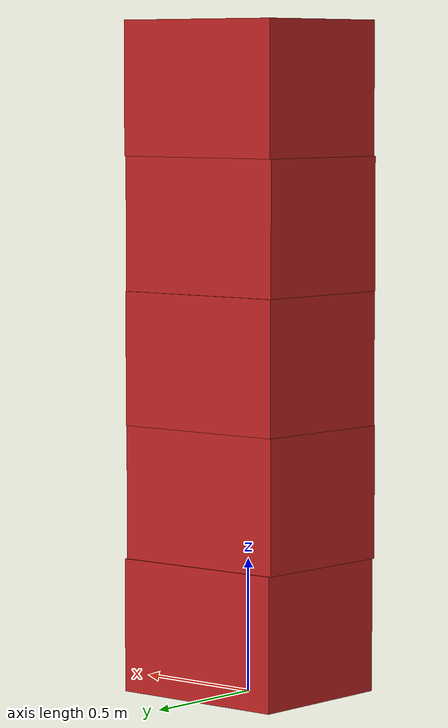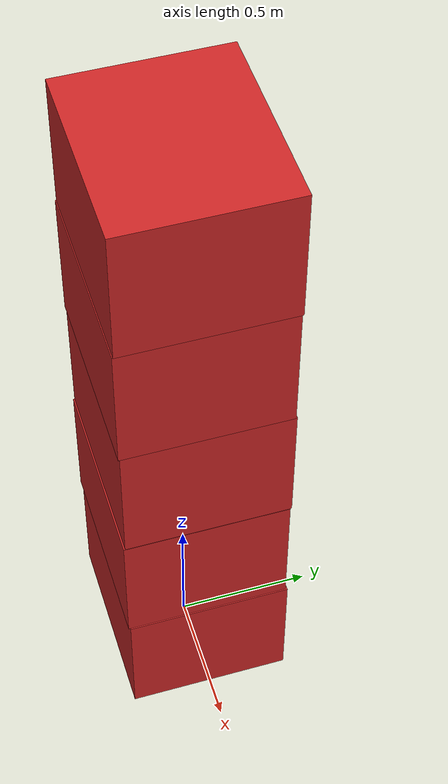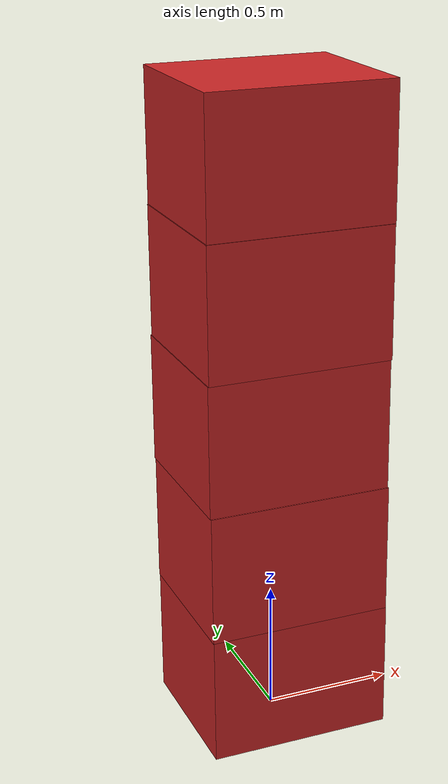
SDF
<?xml version="1.0" encoding="UTF-8"?>
<sdf version='1.4'>
    <model name="baggage_A_x5">
        <model name="baggage_A_0">
            <static>true</static>
            <link name="link">
                <collision name="collision">
                    <geometry>
                    <box>
                        <size>0.7 0.6 0.5</size>
                    </box>
                    </geometry>
                </collision>
                <visual name="visual">
                    <geometry>
                    <box>
                        <size>0.7 0.6 0.5</size>
                    </box>
                    </geometry>
                    <material>
                    <script>
                        <uri>file://media/materials/scripts/gazebo.material</uri>
                        <name>Gazebo/Red</name>
                    </script>
                    </material>
                </visual>
            </link>
            <pose frame=''>0 0 0.25 0 0 0</pose>
        </model>
        <model name="baggage_A_1">
            <static>true</static>
            <link name="link">
                <collision name="collision">
                    <geometry>
                    <box>
                        <size>0.7 0.6 0.5</size>
                    </box>
                    </geometry>
                </collision>
                <visual name="visual">
                    <geometry>
                    <box>
                        <size>0.7 0.6 0.5</size>
                    </box>
                    </geometry>
                    <material>
                    <script>
                        <uri>file://media/materials/scripts/gazebo.material</uri>
                        <name>Gazebo/Red</name>
                    </script>
                    </material>
                </visual>
            </link>
            <pose frame=''>-0.0046 -0.0065 0.75 0 0 0</pose>
        </model>
        <model name="baggage_A_2">
            <static>true</static>
            <link name="link">
                <collision name="collision">
                    <geometry>
                    <box>
                        <size>0.7 0.6 0.5</size>
                    </box>
                    </geometry>
                </collision>
                <visual name="visual">
                    <geometry>
                    <box>
                        <size>0.7 0.6 0.5</size>
                    </box>
                    </geometry>
                    <material>
                    <script>
                        <uri>file://media/materials/scripts/gazebo.material</uri>
                        <name>Gazebo/Red</name>
                    </script>
                    </material>
                </visual>
            </link>
            <pose frame=''>-0.0064 -0.0011 1.25 0 0 0</pose>
        </model>
        <model name="baggage_A_3">
            <static>true</static>
            <link name="link">
                <collision name="collision">
                    <geometry>
                    <box>
                        <size>0.7 0.6 0.5</size>
                    </box>
                    </geometry>
                </collision>
                <visual name="visual">
                    <geometry>
                    <box>
                        <size>0.7 0.6 0.5</size>
                    </box>
                    </geometry>
                    <material>
                    <script>
                        <uri>file://media/materials/scripts/gazebo.material</uri>
                        <name>Gazebo/Red</name>
                    </script>
                    </material>
                </visual>
            </link>
            <pose frame=''>-0.0044 -0.0061 1.75 0 0 0</pose>
        </model>
        <model name="baggage_A_4">
            <static>true</static>
            <link name="link">
                <collision name="collision">
                    <geometry>
                    <box>
                        <size>0.7 0.6 0.5</size>
                    </box>
                    </geometry>
                </collision>
                <visual name="visual">
                    <geometry>
                    <box>
                        <size>0.7 0.6 0.5</size>
                    </box>
                    </geometry>
                    <material>
                    <script>
                        <uri>file://media/materials/scripts/gazebo.material</uri>
                        <name>Gazebo/Red</name>
                    </script>
                    </material>
                </visual>
            </link>
            <pose frame=''>-0.0013 -0.0026 2.25 0 0 0</pose>
        </model>
    </model>
</sdf>
